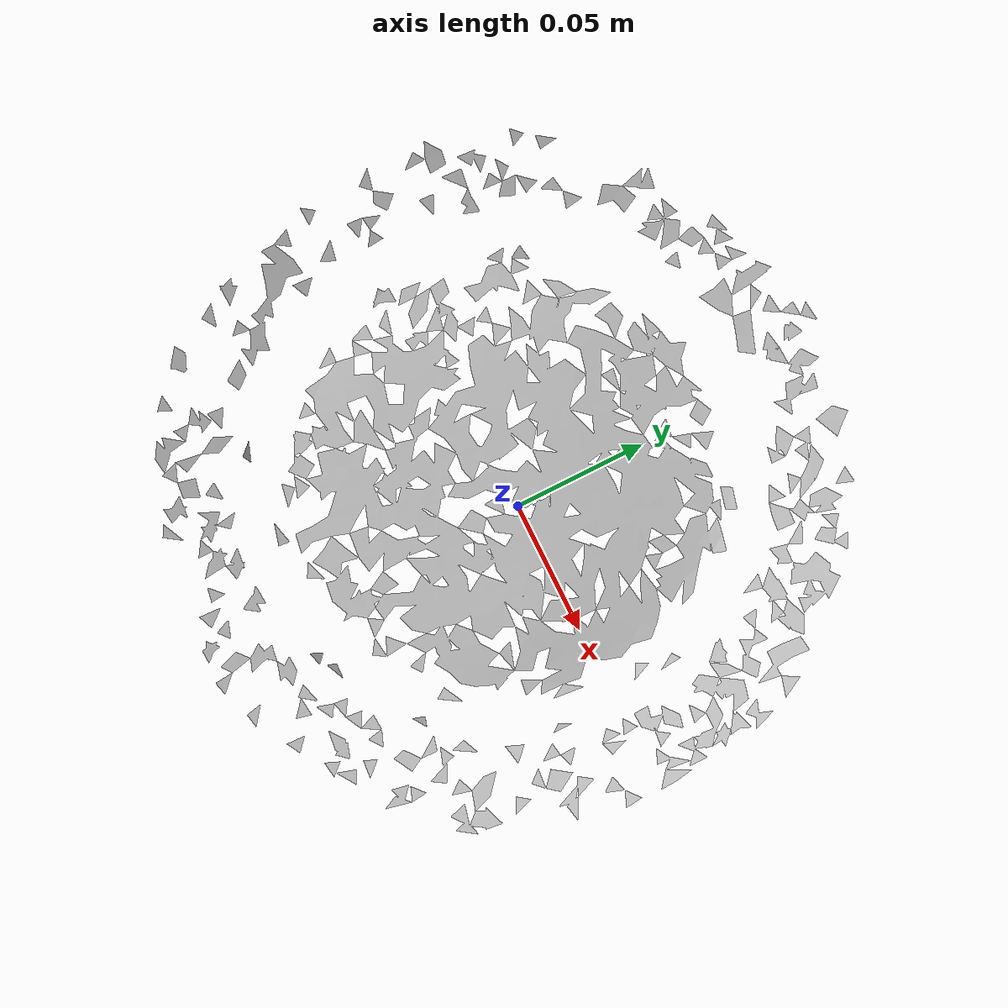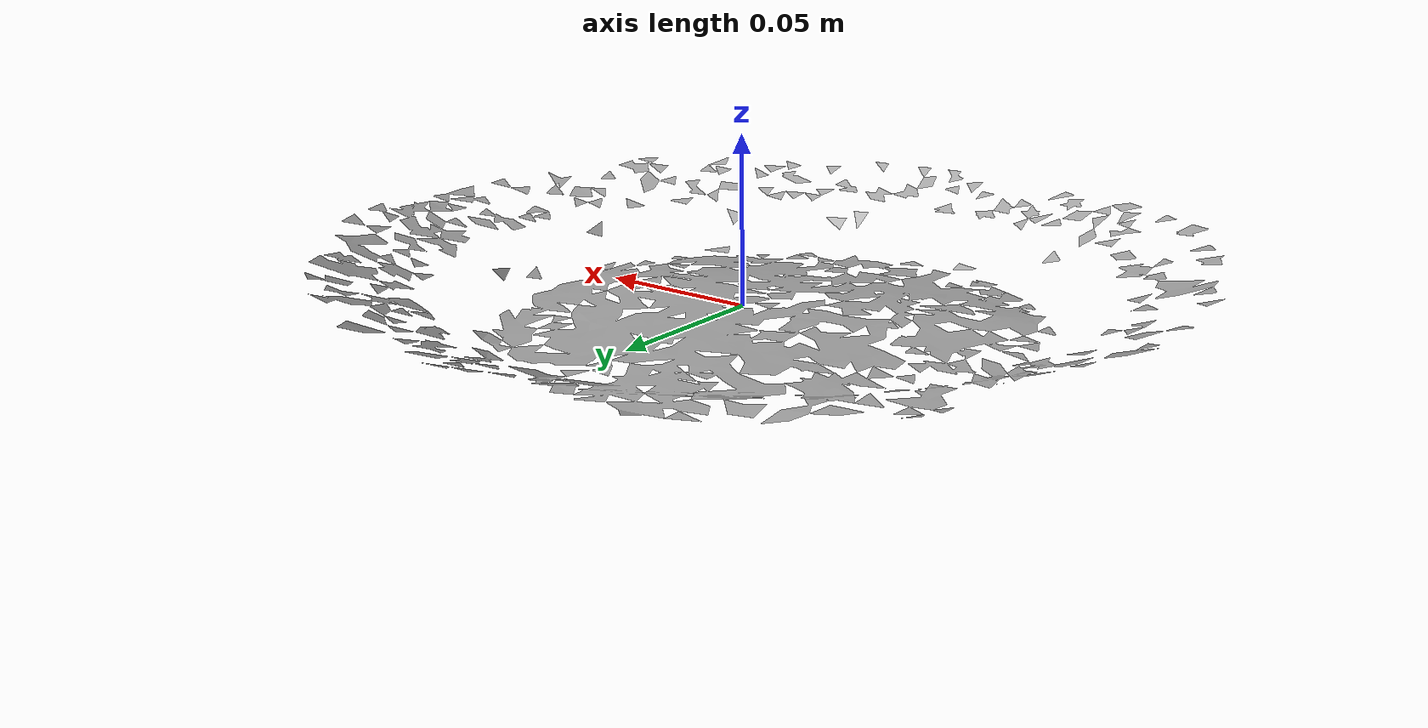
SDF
<?xml version="1.0" ?>
<sdf version="1.4">
  <model name='ycb_029_plate'>
    <link name='body'>
      <inertial>
        <mass>0.279</mass>
        <pose>-0.0100059725844 0.0012469398711 0.00884969241645 0 0 0</pose>
        <inertia>
          <ixx>0.00127503344262</ixx>
          <ixy>-4.05588204411e-06</ixy>
          <ixz>-6.4262931521e-06</ixz>
          <iyy>0.00128091240096</iyy>
          <iyz>-9.5931463023e-06</iyz>
          <izz>0.00250630102286</izz>
        </inertia>
      </inertial>
      <visual name='ycb_029_plate_visual'>
        <pose>0 0 0 0 0 0</pose>
        <geometry>
          <mesh>
            <uri>model://ycb_029_plate/meshes/textured.dae</uri>
          </mesh>
        </geometry>
      </visual>
      <collision name='ycb_029_plate_collision'>
        <pose>0 0 0 0 0 0</pose>
        <geometry>
          <mesh>
            <uri>model://ycb_029_plate/meshes/nontextured.stl</uri>
          </mesh>
        </geometry>
        <max_contacts>10</max_contacts>
      </collision>
    </link>
  </model>
</sdf>
